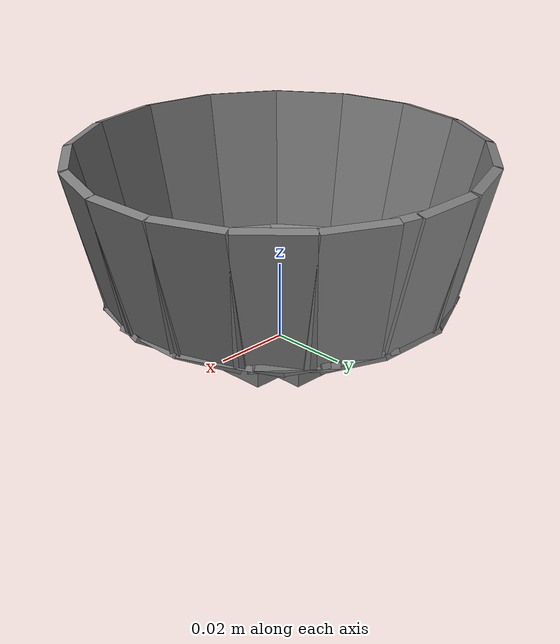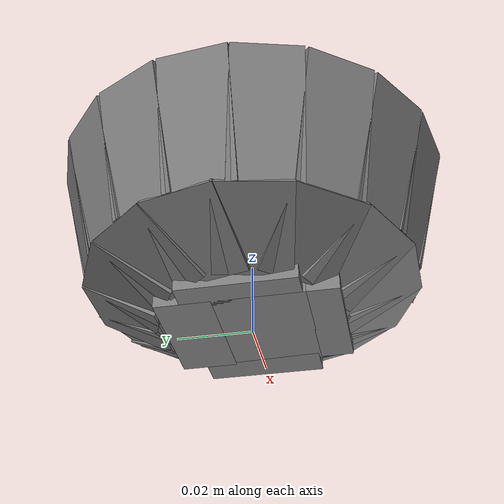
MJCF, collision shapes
<mujoco model="bowl">
  <compiler angle="radian" meshdir="." texturedir="."/>
  <asset>
    <texture file="bowl_texture.png" name="bowl_tex-akita_black_bowl" type="2d" />
    <material name="bowl_akita_black_bowl" reflectance="0.5" texrepeat="1 1" texture="bowl_tex-akita_black_bowl" texuniform="false" />
    <mesh file="bowl_akita_black_bowl_vis.msh" name="bowl_akita_black_bowl_vis" scale="0.7 0.7 0.7" />
  </asset>
  <worldbody>
    <body name="bowl" pos="0 0 0">
      <inertial pos="0.00228217 0.000525935 0.0211249" quat="-0.0255771 0.700346 0.0231716 0.712969" mass="0.15" diaginertia="0.000243641 0.00016378 0.000153351"/>
      <site name="bowl_center" pos="0 0 0" size="0.005" rgba="0 0 0 0"/>
      <site name="bowl_opening" pos="0 0 0.0505" size="0.0501" rgba="0 0 0 0"/>
      <site name="bowl_floor" pos="0 0 0.0052" size="0.005" rgba="0 0 0 0"/>
      <geom name="bowl_vis0" type="mesh" mesh="bowl_akita_black_bowl_vis" pos="5.25069e-06 1.22511e-05 -0.00159" material="bowl_akita_black_bowl" group="2" contype="0" conaffinity="0"/>
      <geom name="bowl_col1" type="box" size="0.00071 0.00992 0.01187" pos="-9.47493e-05 0.0336223 0.0078" quat="0.60990 -0.35780 -0.35780 -0.60990" rgba="0.5 0.5 0.5 0.3" group="3" condim="6" friction="1 0.02 0.004"/>
      <geom name="bowl_col2" type="box" size="0.00071 0.00992 0.01187" pos="-0.0146847 0.0301823 0.008" quat="0.45959 -0.42672 0.26704 0.73169" rgba="0.5 0.5 0.5 0.3" group="3" condim="6" friction="1 0.02 0.004"/>
      <geom name="bowl_col3" type="box" size="0.00071 0.00992 0.01187" pos="-0.0260447 0.0210923 0.00816" quat="0.29172 -0.47299 0.16619 0.81459" rgba="0.5 0.5 0.5 0.3" group="3" condim="6" friction="1 0.02 0.004"/>
      <geom name="bowl_col4" type="box" size="0.00071 0.00992 0.01187" pos="-0.0325247 0.00794225 0.00825" quat="0.10855 -0.49698 0.05658 0.85908" rgba="0.5 0.5 0.5 0.3" group="3" condim="6" friction="1 0.02 0.004"/>
      <geom name="bowl_col5" type="box" size="0.00071 0.00992 0.01187" pos="-0.0328647 -0.00633775 0.00825" quat="0.49761 -0.07722 0.86246 0.05074" rgba="0.5 0.5 0.5 0.3" group="3" condim="6" friction="1 0.02 0.004"/>
      <geom name="bowl_col6" type="box" size="0.00071 0.00992 0.01187" pos="-0.0269147 -0.0198877 0.00825" quat="0.47408 -0.26597 0.82406 0.15949" rgba="0.5 0.5 0.5 0.3" group="3" condim="6" friction="1 0.02 0.004"/>
      <geom name="bowl_col7" type="box" size="0.00071 0.00992 0.01187" pos="-0.0155647 -0.0296277 0.00825" quat="0.42646 -0.44336 0.74380 0.26138" rgba="0.5 0.5 0.5 0.3" group="3" condim="6" friction="1 0.02 0.004"/>
      <geom name="bowl_col8" type="box" size="0.00071 0.00992 0.01187" pos="-0.00120475 -0.0334477 0.00825" quat="0.59728 0.35787 0.34946 -0.62695" rgba="0.5 0.5 0.5 0.3" group="3" condim="6" friction="1 0.02 0.004"/>
      <geom name="bowl_col9" type="box" size="0.00071 0.00992 0.01187" pos="0.0135153 -0.0306177 0.00825" quat="0.72249 0.27055 0.42070 -0.47731" rgba="0.5 0.5 0.5 0.3" group="3" condim="6" friction="1 0.02 0.004"/>
      <geom name="bowl_col10" type="box" size="0.00071 0.00992 0.01187" pos="0.0252353 -0.0219977 0.00825" quat="0.17267 -0.80894 0.30891 0.46945" rgba="0.5 0.5 0.5 0.3" group="3" condim="6" friction="1 0.02 0.004"/>
      <geom name="bowl_col11" type="box" size="0.00071 0.00992 0.01187" pos="0.0322253 -0.00908775 0.00825" quat="0.85700 0.06550 0.49588 -0.12397" rgba="0.5 0.5 0.5 0.3" group="3" condim="6" friction="1 0.02 0.004"/>
      <geom name="bowl_col12" type="box" size="0.00071 0.00992 0.01187" pos="0.0322253 -0.00908775 0.00825" quat="0.85700 0.06550 0.49588 -0.12397" rgba="0.5 0.5 0.5 0.3" group="3" condim="6" friction="1 0.02 0.004"/>
      <geom name="bowl_col13" type="box" size="0.00071 0.00992 0.01187" pos="0.0334853 0.000232251 0.00825" quat="0.86591 -0.00473 0.50017 -0.00248" rgba="0.5 0.5 0.5 0.3" group="3" condim="6" friction="1 0.02 0.004"/>
      <geom name="bowl_col14" type="box" size="0.00071 0.00992 0.01187" pos="0.0303653 0.0141223 0.00825" quat="0.84663 -0.11101 0.48771 0.18175" rgba="0.5 0.5 0.5 0.3" group="3" condim="6" friction="1 0.02 0.004"/>
      <geom name="bowl_col15" type="box" size="0.00071 0.00992 0.01187" pos="0.0215653 0.0256323 0.00825" quat="0.21392 0.78724 0.36065 -0.45213" rgba="0.5 0.5 0.5 0.3" group="3" condim="6" friction="1 0.02 0.004"/>
      <geom name="bowl_col16" type="box" size="0.00071 0.00992 0.01187" pos="0.0115753 0.0314323 0.00825" quat="0.71324 -0.28870 0.40847 0.49101" rgba="0.5 0.5 0.5 0.3" group="3" condim="6" friction="1 0.02 0.004"/>
      <geom name="bowl_col17" type="box" size="0.00128 0.00934 0.01875" pos="-9.47493e-05 0.0471323 0.03208" quat="0.09041 0.70130 0.70130 -0.09041" rgba="0.5 0.5 0.5 0.3" group="3" condim="6" friction="1 0.02 0.004"/>
      <geom name="bowl_col18" type="box" size="0.00128 0.00934 0.01875" pos="-0.0172347 0.0438623 0.03208" quat="0.10558 0.55930 0.81905 -0.07209" rgba="0.5 0.5 0.5 0.3" group="3" condim="6" friction="1 0.02 0.004"/>
      <geom name="bowl_col19" type="box" size="0.00128 0.00934 0.01875" pos="-0.0317347 0.0348423 0.03208" quat="0.11689 0.40164 0.90683 -0.05176" rgba="0.5 0.5 0.5 0.3" group="3" condim="6" friction="1 0.02 0.004"/>
      <geom name="bowl_col20" type="box" size="0.00128 0.00934 0.01875" pos="-0.0421347 0.0210923 0.03208" quat="0.22890 -0.12439 0.02951 0.96502" rgba="0.5 0.5 0.5 0.3" group="3" condim="6" friction="1 0.02 0.004"/>
      <geom name="bowl_col21" type="box" size="0.00128 0.00934 0.01875" pos="-0.0468847 0.00461225 0.03208" quat="0.12768 0.04949 0.99056 -0.00638" rgba="0.5 0.5 0.5 0.3" group="3" condim="6" friction="1 0.02 0.004"/>
      <geom name="bowl_col22" type="box" size="0.00128 0.00934 0.01875" pos="-0.0455447 -0.0120277 0.03208" quat="0.12679 0.12680 0.01635 -0.98366" rgba="0.5 0.5 0.5 0.3" group="3" condim="6" friction="1 0.02 0.004"/>
      <geom name="bowl_col23" type="box" size="0.00128 0.00934 0.01875" pos="-0.0382447 -0.0274977 0.03208" quat="0.12173 -0.30325 0.94430 0.03909" rgba="0.5 0.5 0.5 0.3" group="3" condim="6" friction="1 0.02 0.004"/>
      <geom name="bowl_col24" type="box" size="0.00128 0.00934 0.01875" pos="-0.0257547 -0.0394477 0.03208" quat="0.11249 -0.47128 0.87267 0.06075" rgba="0.5 0.5 0.5 0.3" group="3" condim="6" friction="1 0.02 0.004"/>
      <geom name="bowl_col25" type="box" size="0.00128 0.00934 0.01875" pos="-0.0100947 -0.0460077 0.03208" quat="0.62080 0.09971 0.08003 -0.77348" rgba="0.5 0.5 0.5 0.3" group="3" condim="6" friction="1 0.02 0.004"/>
      <geom name="bowl_col26" type="box" size="0.00128 0.00934 0.01875" pos="0.00698525 -0.0465877 0.03208" quat="0.75082 0.08352 0.09678 -0.64802" rgba="0.5 0.5 0.5 0.3" group="3" condim="6" friction="1 0.02 0.004"/>
      <geom name="bowl_col27" type="box" size="0.00128 0.00934 0.01875" pos="0.0232553 -0.0409677 0.03208" quat="0.06445 -0.85651 0.50004 0.11041" rgba="0.5 0.5 0.5 0.3" group="3" condim="6" friction="1 0.02 0.004"/>
      <geom name="bowl_col28" type="box" size="0.00128 0.00934 0.01875" pos="0.0363153 -0.0300177 0.03208" quat="0.93283 0.04342 0.12024 -0.33687" rgba="0.5 0.5 0.5 0.3" group="3" condim="6" friction="1 0.02 0.004"/>
      <geom name="bowl_col29" type="box" size="0.00128 0.00934 0.01875" pos="0.0447553 -0.0147377 0.03208" quat="0.02040 -0.97909 0.15826 0.12620" rgba="0.5 0.5 0.5 0.3" group="3" condim="6" friction="1 0.02 0.004"/>
      <geom name="bowl_col30" type="box" size="0.00128 0.00934 0.01875" pos="0.0470853 0.00186225 0.03208" quat="0.00238 0.99162 0.01844 -0.12782" rgba="0.5 0.5 0.5 0.3" group="3" condim="6" friction="1 0.02 0.004"/>
      <geom name="bowl_col31" type="box" size="0.00128 0.00934 0.01875" pos="0.0470853 0.00186225 0.03208" quat="0.00238 0.99162 0.01844 -0.12782" rgba="0.5 0.5 0.5 0.3" group="3" condim="6" friction="1 0.02 0.004"/>
      <geom name="bowl_col32" type="box" size="0.00128 0.00934 0.01875" pos="0.0434153 0.0183323 0.03208" quat="0.02524 0.97229 0.19574 -0.12533" rgba="0.5 0.5 0.5 0.3" group="3" condim="6" friction="1 0.02 0.004"/>
      <geom name="bowl_col33" type="box" size="0.00128 0.00934 0.01875" pos="0.0341653 0.0324623 0.03208" quat="0.04729 0.92146 0.36683 -0.11878" rgba="0.5 0.5 0.5 0.3" group="3" condim="6" friction="1 0.02 0.004"/>
      <geom name="bowl_col34" type="box" size="0.00128 0.00934 0.01875" pos="0.0206753 0.0423523 0.03208" quat="0.06760 0.84175 0.52452 -0.10850" rgba="0.5 0.5 0.5 0.3" group="3" condim="6" friction="1 0.02 0.004"/>
      <geom name="bowl_col35" type="box" size="0.00125 0.00444 0.01872" pos="0.0105653 0.0459323 0.03208" quat="0.07953 0.77656 0.61693 -0.10010" rgba="0.5 0.5 0.5 0.3" group="3" condim="6" friction="1 0.02 0.004"/>
      <geom name="bowl_col36" type="box" size="0.00258 0.01547 0.01617" pos="5.25069e-06 -0.000737749 0.00258" quat="0.70711 0.00000 0.70711 0.00000" rgba="0.5 0.5 0.5 0.3" group="3" condim="6" friction="1 0.02 0.004"/>
      <geom name="bowl_col37" type="box" size="0.00258 0.00431 0.01617" pos="5.25069e-06 -0.0201977 0.00258" quat="0.70711 0.00000 0.70711 0.00000" rgba="0.5 0.5 0.5 0.3" group="3" condim="6" friction="1 0.02 0.004"/>
      <geom name="bowl_col38" type="box" size="0.00258 0.00495 0.01547" pos="0.0182153 0.000172251 0.00258" quat="0.50000 -0.50000 0.50000 0.50000" rgba="0.5 0.5 0.5 0.3" group="3" condim="6" friction="1 0.02 0.004"/>
      <geom name="bowl_col39" type="box" size="0.00258 0.00453 0.01547" pos="-0.0180947 5.22511e-05 0.00258" quat="0.50000 -0.50000 0.50000 0.50000" rgba="0.5 0.5 0.5 0.3" group="3" condim="6" friction="1 0.02 0.004"/>
      <geom name="bowl_col40" type="box" size="0.00258 0.00741 0.01617" pos="5.25069e-06 0.0149123 0.00258" quat="0.00000 0.70711 0.00000 -0.70711" rgba="0.5 0.5 0.5 0.3" group="3" condim="6" friction="1 0.02 0.004"/>
    </body>
  </worldbody>
</mujoco>
